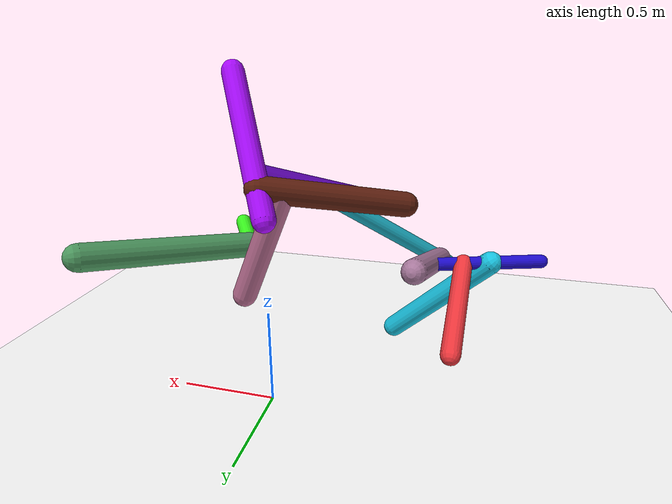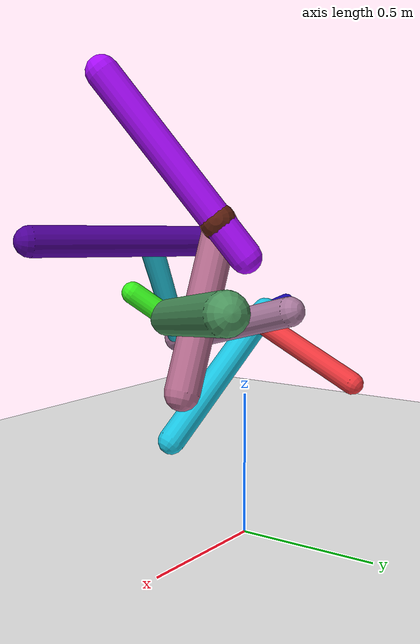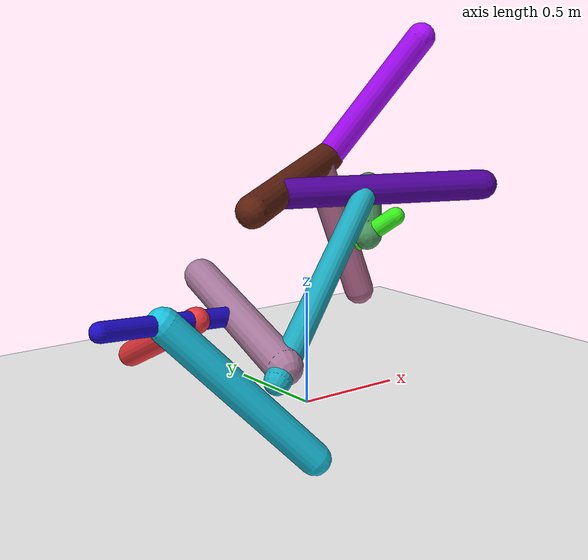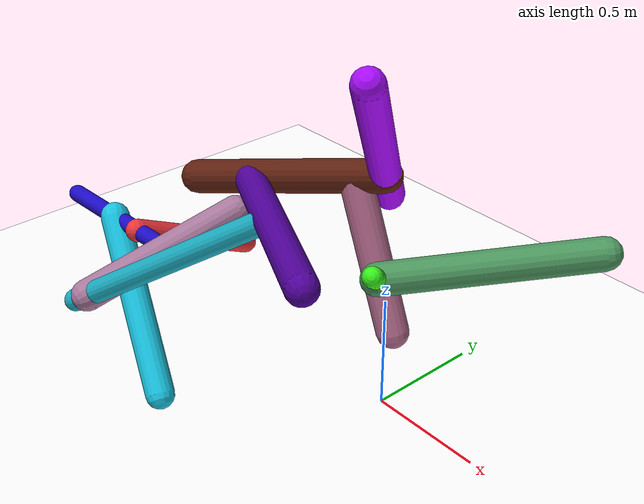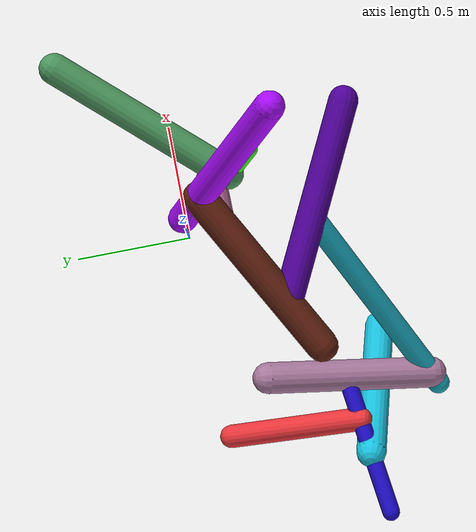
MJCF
<mujoco model="morphology">
  <option timestep="0.01"/>
  <default>
    <default class="/"/>
    <default class="0/"/>
    <default class="0/1/"/>
    <default class="0/1/2/"/>
    <default class="0/1/2/3/"/>
    <default class="0/1/2/3/4/"/>
    <default class="0/1/5/"/>
    <default class="0/1/5/6/"/>
    <default class="0/1/5/6/7/"/>
    <default class="0/1/5/6/7/8/"/>
    <default class="0/1/5/6/7/8/9/"/>
    <default class="0/1/5/6/7/8/10/"/>
  </default>
  <asset>
    <texture name="texplane" type="2d" builtin="checker" rgb1="0.10000000000000001 0.20000000000000001 0.29999999999999999" rgb2="0.20000000000000001 0.29999999999999999 0.40000000000000002" width="300" height="300"/>
    <material name="MatPlane" class="/" texture="texplane" texrepeat="20 20" specular="1" shininess="1" reflectance="0.5"/>
  </asset>
  <worldbody>
    <light name="//unnamed_light_0" class="/" directional="true" pos="0 0 1.5" dir="0 0 -1.3" cutoff="100" exponent="1" diffuse="1 1 1" specular="0.10000000000000001 0.10000000000000001 0.10000000000000001"/>
    <geom name="ground" class="/" type="plane" size="15 15 0.5" material="MatPlane" rgba="1 1 1 1"/>
    <site name="body" class="/" size="9.9999999999999995e-07 9.9999999999999995e-07 9.9999999999999995e-07" pos="0 0 0.98092535734176634"/>
    <body pos="0 0 0.98092535734176634" name="0/">
      <freejoint name="0/"/>
      <geom name="0/geom" class="0/" type="capsule" contype="1" conaffinity="1" condim="3" size="0.058543389482679536" rgba="0.66112986967146548 0.040546487545941923 0.99139773708066015 1" friction="0.59999999999999998 0.10000000000000001 0.10000000000000001" fromto="0 0 0 0.28459859513973629 -0.39543337002057322 0.62691749963213783"/>
      <site name="0/end0" class="0/" size="0.0050000000000000001" pos="0.28459859513973629 -0.39543337002057322 0.62691749963213783"/>
      <site name="0/attach1" class="0/" size="9.9999999999999995e-07 9.9999999999999995e-07 9.9999999999999995e-07" pos="0.056572957770049372 -0.078604869191494925 0.12461964970199514"/>
      <body pos="0.056572957770049372 -0.078604869191494925 0.12461964970199514" name="0/1/">
        <geom name="0/1/geom" class="0/1/" type="capsule" contype="1" conaffinity="1" condim="3" size="0.064614743933545368" rgba="0.37287673245040276 0.12798741246605938 0.063922133745744181 1" friction="0.59999999999999998 0.10000000000000001 0.10000000000000001" fromto="0 0 0 -0.65127642539531827 -0.3652842205934117 -0.12985988878642085"/>
        <site name="0/1/end1" class="0/1/" size="0.0050000000000000001" pos="-0.65127642539531827 -0.3652842205934117 -0.12985988878642085"/>
        <site name="0/1/attach2" class="0/1/" size="9.9999999999999995e-07 9.9999999999999995e-07 9.9999999999999995e-07" pos="-0.10083106136653597 -0.056553552726133001 -0.02010499674900295"/>
        <body pos="-0.10083106136653597 -0.056553552726133001 -0.02010499674900295" name="0/1/2/">
          <geom name="0/1/2/geom" class="0/1/2/" type="capsule" contype="1" conaffinity="1" condim="3" size="0.063271113468469087" rgba="0.7146803546629521 0.42296737088742997 0.56154027647912641 1" friction="0.59999999999999998 0.10000000000000001 0.10000000000000001" fromto="0 0 0 0.2264525829862194 -0.0039520702408269992 -0.56824781158492232"/>
          <site name="0/1/2/end2" class="0/1/2/" size="0.0050000000000000001" pos="0.2264525829862194 -0.0039520702408269992 -0.56824781158492232"/>
          <site name="0/1/2/attach3" class="0/1/2/" size="9.9999999999999995e-07 9.9999999999999995e-07 9.9999999999999995e-07" pos="0.15089886573881192 -0.002633500173840802 -0.37865741735410019"/>
          <body pos="0.15089886573881192 -0.002633500173840802 -0.37865741735410019" name="0/1/2/3/">
            <geom name="0/1/2/3/geom" class="0/1/2/3/" type="capsule" contype="1" conaffinity="1" condim="3" size="0.039038134951765786" rgba="0.21313636863834606 0.94448483872249356 0.11057433235140424 1" friction="0.59999999999999998 0.10000000000000001 0.10000000000000001" fromto="0 0 0 0.1316254112558175 -0.17015983081684993 0.15208606724580287"/>
            <site name="0/1/2/3/end3" class="0/1/2/3/" size="0.0050000000000000001" pos="0.1316254112558175 -0.17015983081684993 0.15208606724580287"/>
            <site name="0/1/2/3/attach4" class="0/1/2/3/" size="9.9999999999999995e-07 9.9999999999999995e-07 9.9999999999999995e-07" pos="0.056979900289564914 -0.073661233805298515 0.065837203199734753"/>
            <body pos="0.056979900289564914 -0.073661233805298515 0.065837203199734753" name="0/1/2/3/4/">
              <joint name="0/1/2/3/4/joint/" class="0/1/2/3/" type="hinge" axis="-5.5511151231257827e-17 0.66640003897546962 0.74559438574434878" limited="true" range="-59.649440199916199 59.649440199916199"/>
              <geom name="0/1/2/3/4/geom" class="0/1/2/3/4/" type="capsule" contype="1" conaffinity="1" condim="3" size="0.063840859882816112" rgba="0.29681560488489045 0.58922561345865343 0.36797944572189922 1" friction="0.59999999999999998 0.10000000000000001 0.10000000000000001" fromto="0 0 0 0.53253743764023587 0.60542511448751002 0.1108137497251479"/>
              <site name="0/1/2/3/4/end4" class="0/1/2/3/4/" size="0.0050000000000000001" pos="0.53253743764023587 0.60542511448751002 0.1108137497251479"/>
            </body>
          </body>
        </body>
        <site name="0/1/attach5" class="0/1/" size="9.9999999999999995e-07 9.9999999999999995e-07 9.9999999999999995e-07" pos="-0.46604529495639041 -0.2613928367298699 -0.092926118330993124"/>
        <body pos="-0.46604529495639041 -0.2613928367298699 -0.092926118330993124" name="0/1/5/">
          <geom name="0/1/5/geom" class="0/1/5/" type="capsule" contype="1" conaffinity="1" condim="3" size="0.059510520850909882" rgba="0.3075388578663788 0.00018312275830234537 0.60235087821931632 1" friction="0.59999999999999998 0.10000000000000001 0.10000000000000001" fromto="0 0 0 0.74440536254138401 -0.36699473550296841 0.016420439993380387"/>
          <site name="0/1/5/end5" class="0/1/5/" size="0.0050000000000000001" pos="0.74440536254138401 -0.36699473550296841 0.016420439993380387"/>
          <site name="0/1/5/attach6" class="0/1/5/" size="9.9999999999999995e-07 9.9999999999999995e-07 9.9999999999999995e-07" pos="0.32025656422361426 -0.15788773025369049 0.0070643683669429202"/>
          <body pos="0.32025656422361426 -0.15788773025369049 0.0070643683669429202" name="0/1/5/6/">
            <joint name="0/1/5/6/joint/" class="0/1/5/" type="hinge" axis="0 0.044698265994688083 0.99900053304143344" limited="true" range="-36.06679453732751 36.06679453732751"/>
            <geom name="0/1/5/6/geom" class="0/1/5/6/" type="capsule" contype="1" conaffinity="1" condim="3" size="0.046614936435275159" rgba="0.10701375891945342 0.67667383029841943 0.75758944018793695 1" friction="0.59999999999999998 0.10000000000000001 0.10000000000000001" fromto="0 0 0 -0.73478309247803475 -0.41057948897726998 -0.52713486139242227"/>
            <site name="0/1/5/6/end6" class="0/1/5/6/" size="0.0050000000000000001" pos="-0.73478309247803475 -0.41057948897726998 -0.52713486139242227"/>
            <site name="0/1/5/6/attach7" class="0/1/5/6/" size="9.9999999999999995e-07 9.9999999999999995e-07 9.9999999999999995e-07" pos="-0.68664703390016701 -0.38368219297985062 -0.49260195661252582"/>
            <body pos="-0.68664703390016701 -0.38368219297985062 -0.49260195661252582" name="0/1/5/6/7/">
              <joint name="0/1/5/6/7/joint/" class="0/1/5/6/" type="hinge" axis="0.67277313590492172 -0.45462723529017113 -0.58368688912555955" limited="true" range="-32.268435574085366 32.268435574085366"/>
              <geom name="0/1/5/6/7/geom" class="0/1/5/6/7/" type="capsule" contype="1" conaffinity="1" condim="3" size="0.064870257068288209" rgba="0.66481636556582657 0.47725995104433416 0.6197481448600437 1" friction="0.59999999999999998 0.10000000000000001 0.10000000000000001" fromto="0 0 0 0.098794605205155595 0.6653580270465056 0.18087477345747693"/>
              <site name="0/1/5/6/7/end7" class="0/1/5/6/7/" size="0.0050000000000000001" pos="0.098794605205155595 0.6653580270465056 0.18087477345747693"/>
              <site name="0/1/5/6/7/attach8" class="0/1/5/6/7/" size="9.9999999999999995e-07 9.9999999999999995e-07 9.9999999999999995e-07" pos="0.052143706452860407 0.3511753863110415 0.095465547661322328"/>
              <body pos="0.052143706452860407 0.3511753863110415 0.095465547661322328" name="0/1/5/6/7/8/">
                <joint name="0/1/5/6/7/8/joint/" class="0/1/5/6/7/" type="hinge" axis="-0.98989033443721397 0.13686771549950955 0.037206911209152441" limited="true" range="-40.170348733191418 40.170348733191418"/>
                <geom name="0/1/5/6/7/8/geom" class="0/1/5/6/7/8/" type="capsule" contype="1" conaffinity="1" condim="3" size="0.035958517147466937" rgba="0.11461625562555677 0.041752997199111075 0.77836622553464907 1" friction="0.59999999999999998 0.10000000000000001 0.10000000000000001" fromto="0 0 0 -0.57839923057135167 -0.071839608818120126 0.049894936211036356"/>
                <site name="0/1/5/6/7/8/end8" class="0/1/5/6/7/8/" size="0.0050000000000000001" pos="-0.57839923057135167 -0.071839608818120126 0.049894936211036356"/>
                <site name="0/1/5/6/7/8/attach9" class="0/1/5/6/7/8/" size="9.9999999999999995e-07 9.9999999999999995e-07 9.9999999999999995e-07" pos="-0.18678585409545886 -0.023199585998275107 0.016112864233949191"/>
                <body pos="-0.18678585409545886 -0.023199585998275107 0.016112864233949191" name="0/1/5/6/7/8/9/">
                  <joint name="0/1/5/6/7/8/9/joint/" class="0/1/5/6/7/8/" type="hinge" axis="0.14952214120805613 -0.81210296684409722 0.56403182581444211" limited="true" range="-35.178631730835818 35.178631730835818"/>
                  <geom name="0/1/5/6/7/8/9/geom" class="0/1/5/6/7/8/9/" type="capsule" contype="1" conaffinity="1" condim="3" size="0.048437244530518377" rgba="0.9284757802509197 0.21318620472432526 0.23383935265129019 1" friction="0.59999999999999998 0.10000000000000001 0.10000000000000001" fromto="0 0 0 0.026606678485365798 0.53082279724444725 -0.24911195056363789"/>
                  <site name="0/1/5/6/7/8/9/end9" class="0/1/5/6/7/8/9/" size="0.0050000000000000001" pos="0.026606678485365798 0.53082279724444725 -0.24911195056363789"/>
                </body>
                <site name="0/1/5/6/7/8/attach10" class="0/1/5/6/7/8/" size="9.9999999999999995e-07 9.9999999999999995e-07 9.9999999999999995e-07" pos="-0.32722392387647575 -0.040642582916293177 0.028227590815454392"/>
                <body pos="-0.32722392387647575 -0.040642582916293177 0.028227590815454392" name="0/1/5/6/7/8/10/">
                  <joint name="0/1/5/6/7/8/10/joint/" class="0/1/5/6/7/8/" type="hinge" axis="0.14952214120805613 -0.81210296684409722 0.56403182581444211" limited="true" range="-61.90747550779632 61.90747550779632"/>
                  <geom name="0/1/5/6/7/8/10/geom" class="0/1/5/6/7/8/10/" type="capsule" contype="1" conaffinity="1" condim="3" size="0.061154201520590284" rgba="0.098425669378848113 0.76831130237846601 0.88383044739241345 1" friction="0.59999999999999998 0.10000000000000001 0.10000000000000001" fromto="0 0 0 0.51538094262867795 -0.16915427029892305 -0.55077441409229899"/>
                  <site name="0/1/5/6/7/8/10/end10" class="0/1/5/6/7/8/10/" size="0.0050000000000000001" pos="0.51538094262867795 -0.16915427029892305 -0.55077441409229899"/>
                </body>
              </body>
            </body>
          </body>
        </body>
      </body>
      <camera name="0/iso" class="0/" mode="trackcom" pos="-2.2999999999999998 -2.2999999999999998 1" xyaxes="0.45000000000000001 -0.45000000000000001 0 0.29999999999999999 0.14999999999999999 0.93999999999999995"/>
    </body>
  </worldbody>
  <actuator>
    <motor name="0/1/2/3/4/motor" class="0/1/2/3/4/" ctrllimited="true" ctrlrange="-1 1" gear="77" joint="0/1/2/3/4/joint/"/>
    <motor name="0/1/5/6/motor" class="0/1/5/6/" ctrllimited="true" ctrlrange="-1 1" gear="96" joint="0/1/5/6/joint/"/>
    <motor name="0/1/5/6/7/motor" class="0/1/5/6/7/" ctrllimited="true" ctrlrange="-1 1" gear="71" joint="0/1/5/6/7/joint/"/>
    <motor name="0/1/5/6/7/8/motor" class="0/1/5/6/7/8/" ctrllimited="true" ctrlrange="-1 1" gear="99" joint="0/1/5/6/7/8/joint/"/>
    <motor name="0/1/5/6/7/8/9/motor" class="0/1/5/6/7/8/9/" ctrllimited="true" ctrlrange="-1 1" gear="74" joint="0/1/5/6/7/8/9/joint/"/>
    <motor name="0/1/5/6/7/8/10/motor" class="0/1/5/6/7/8/10/" ctrllimited="true" ctrlrange="-1 1" gear="88" joint="0/1/5/6/7/8/10/joint/"/>
  </actuator>
  <sensor>
    <subtreelinvel name="velocity" body="0/"/>
  </sensor>
</mujoco>
